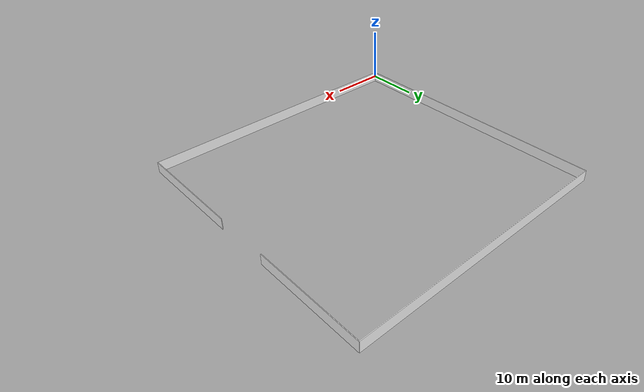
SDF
<?xml version='1.0'?>
<sdf version='1.6'>
  <model name='enclosure'>
    <pose frame=''>0 0 0 0 0 0</pose>
    <static>1</static>

    <link name='Wall_1'>
      <collision name='Wall_1_Collision'>
        <geometry>
          <box>
            <size>0.1 50 2</size>
          </box>
        </geometry>
        <pose frame=''>0 0 0 0 0 0</pose>
      </collision>
      <visual name='Wall_1_Visual'>
        <pose frame=''>0 0 0 0 0 0</pose>
        <geometry>
          <box>
            <size>0.1 50 2</size>
          </box>
        </geometry>
        <material>
          <script>
            <uri>model://corridor/materials/scripts</uri>
            <uri>model://corridor/materials/textures</uri>
            <name>Gazebo/Brick</name>
          </script>
          <ambient>1 1 1 1</ambient>
        </material>
        <meta>
          <layer>0</layer>
        </meta>
      </visual>
      <pose frame=''>0 25 0 0 0 0</pose>
    </link>

    <link name='Wall_2'>
      <collision name='Wall_2_Collision'>
        <geometry>
          <box>
            <size>50 0.1 2</size>
          </box>
        </geometry>
        <pose frame=''>0 0 0 0 0 0</pose>
      </collision>
      <visual name='Wall_2_Visual'>
        <pose frame=''>0 0 0 0 0 0</pose>
        <geometry>
          <box>
            <size>50 0.1 2</size>
          </box>
        </geometry>
        <material>
          <script>
            <name>Gazebo/Brick</name>
          </script>
          <ambient>1 1 1 1</ambient>
        </material>
        <meta>
          <layer>0</layer>
        </meta>
      </visual>
      <pose frame=''>25 50 0 0 0 0</pose>
    </link>

    <link name='Wall_3'>
      <collision name='Wall_3_Collision'>
        <geometry>
          <box>
            <size>0.1 20 2</size>
          </box>
        </geometry>
        <pose frame=''>0 0 0 0 0 0</pose>
      </collision>
      <visual name='Wall_3_Visual'>
        <pose frame=''>0 0 0 0 0 0</pose>
        <geometry>
          <box>
            <size>0.1 20 2</size>
          </box>
        </geometry>
        <material>
          <script>
            <name>Gazebo/Brick</name>
          </script>
          <ambient>1 1 1 1</ambient>
        </material>
        <meta>
          <layer>0</layer>
        </meta>
      </visual>
      <pose frame=''>50 40 0 0 0 0</pose>
    </link>

    <link name='Wall_4'>
      <collision name='Wall_4_Collision'>
        <geometry>
          <box>
            <size>0.1 20 2</size>
          </box>
        </geometry>
        <pose frame=''>0 0 0 0 0 0</pose>
      </collision>
      <visual name='Wall_4_Visual'>
        <pose frame=''>0 0 0 0 0 0</pose>
        <geometry>
          <box>
            <size>0.1 20 2</size>
          </box>
        </geometry>
        <material>
          <script>
            <name>Gazebo/Brick</name>
          </script>
          <ambient>1 1 1 1</ambient>
        </material>
        <meta>
          <layer>0</layer>
        </meta>
      </visual>
      <pose frame=''>50 10 0 0 0 0</pose>
    </link>

    <link name='Wall_5'>
      <collision name='Wall_5_Collision'>
        <geometry>
          <box>
            <size>50 0.1 2</size>
          </box>
        </geometry>
        <pose frame=''>0 0 0 0 0 0</pose>
      </collision>
      <visual name='Wall_5_Visual'>
        <pose frame=''>0 0 0 0 0 0</pose>
        <geometry>
          <box>
            <size>50 0.1 2</size>
          </box>
        </geometry>
        <material>
          <script>
            <name>Gazebo/Brick</name>
          </script>
          <ambient>1 1 1 1</ambient>
        </material>
        <meta>
          <layer>0</layer>
        </meta>
      </visual>
      <pose frame=''>25 0 0 0 0 0</pose>
    </link>

  </model>
</sdf>
